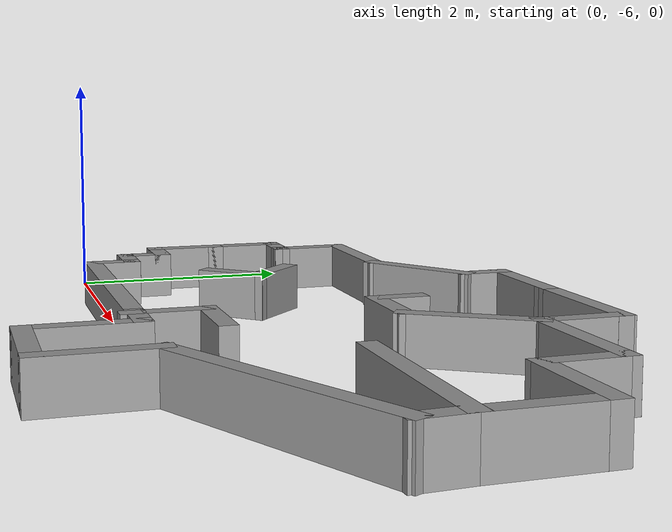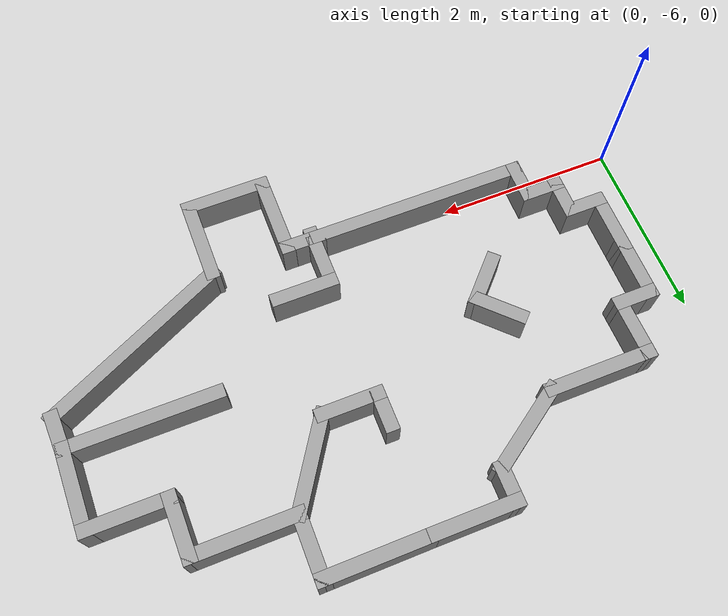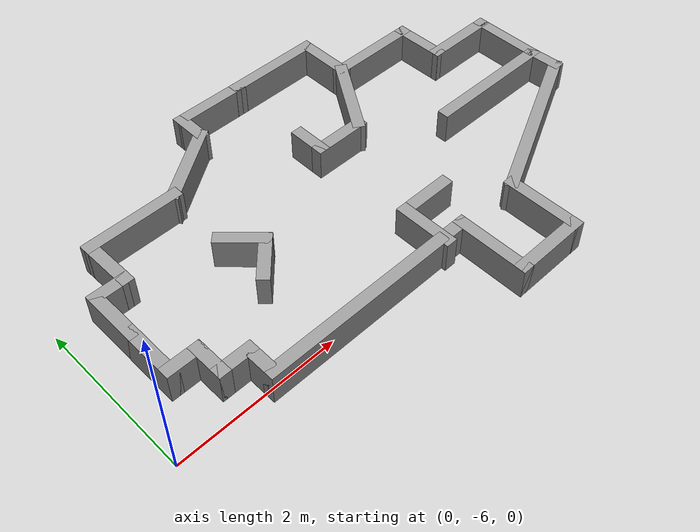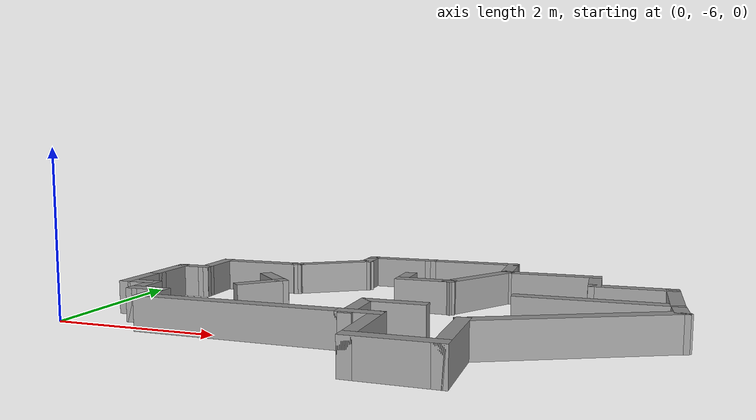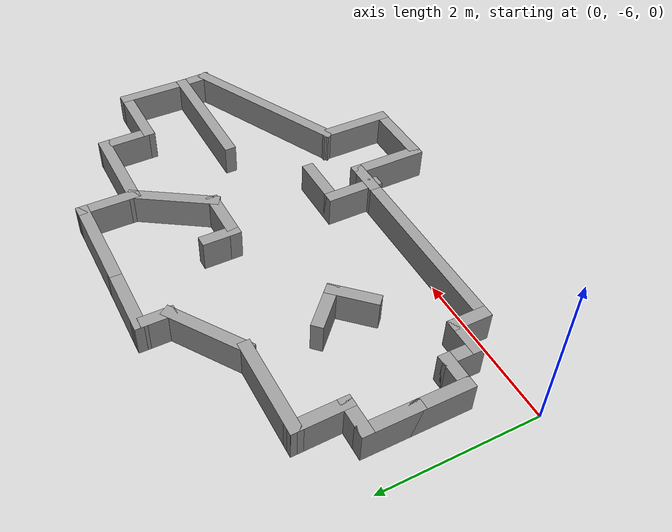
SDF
<?xml version='1.0'?>
<sdf version='1.7'>
  <model name='RAL23_fanhua_1'>
    <pose>3.39752 -3.4885 0 0 -0 0</pose>
    <link name='Wall_100'>
      <collision name='Wall_100_Collision'>
        <geometry>
          <box>
            <size>0.75 0.15 0.4</size>
          </box>
        </geometry>
        <pose>0 0 0.2 0 -0 0</pose>
      </collision>
      <visual name='Wall_100_Visual'>
        <pose>0 0 0.2 0 -0 0</pose>
        <geometry>
          <box>
            <size>0.75 0.15 0.4</size>
          </box>
        </geometry>
        <material>
          <script>
            <uri>file://media/materials/scripts/gazebo.material</uri>
            <name>Gazebo/Grey</name>
          </script>
          <ambient>1 1 1 1</ambient>
        </material>
        <meta>
          <layer>0</layer>
        </meta>
      </visual>
      <pose>-2.92852 -0.9635 0 0 -0 1.5708</pose>
    </link>
    <link name='Wall_101'>
      <collision name='Wall_101_Collision'>
        <geometry>
          <box>
            <size>0.5 0.15 0.4</size>
          </box>
        </geometry>
        <pose>0 0 0.2 0 -0 0</pose>
      </collision>
      <visual name='Wall_101_Visual'>
        <pose>0 0 0.2 0 -0 0</pose>
        <geometry>
          <box>
            <size>0.5 0.15 0.4</size>
          </box>
        </geometry>
        <material>
          <script>
            <uri>file://media/materials/scripts/gazebo.material</uri>
            <name>Gazebo/Grey</name>
          </script>
          <ambient>1 1 1 1</ambient>
        </material>
        <meta>
          <layer>0</layer>
        </meta>
      </visual>
      <pose>-2.75352 -0.6635 0 0 -0 0</pose>
    </link>
    <link name='Wall_102'>
      <collision name='Wall_102_Collision'>
        <geometry>
          <box>
            <size>0.75 0.15 0.4</size>
          </box>
        </geometry>
        <pose>0 0 0.2 0 -0 0</pose>
      </collision>
      <visual name='Wall_102_Visual'>
        <pose>0 0 0.2 0 -0 0</pose>
        <geometry>
          <box>
            <size>0.75 0.15 0.4</size>
          </box>
        </geometry>
        <material>
          <script>
            <uri>file://media/materials/scripts/gazebo.material</uri>
            <name>Gazebo/Grey</name>
          </script>
          <ambient>1 1 1 1</ambient>
        </material>
        <meta>
          <layer>0</layer>
        </meta>
      </visual>
      <pose>-2.58302 -0.3635 0 0 -0 1.5858</pose>
    </link>
    <link name='Wall_103'>
      <collision name='Wall_103_Collision'>
        <geometry>
          <box>
            <size>1.25 0.15 0.4</size>
          </box>
        </geometry>
        <pose>0 0 0.2 0 -0 0</pose>
      </collision>
      <visual name='Wall_103_Visual'>
        <pose>0 0 0.2 0 -0 0</pose>
        <geometry>
          <box>
            <size>1.25 0.15 0.4</size>
          </box>
        </geometry>
        <material>
          <script>
            <uri>file://media/materials/scripts/gazebo.material</uri>
            <name>Gazebo/Grey</name>
          </script>
          <ambient>1 1 1 1</ambient>
        </material>
        <meta>
          <layer>0</layer>
        </meta>
      </visual>
      <pose>-2.03752 -0.0635 0 0 -0 0</pose>
    </link>
    <link name='Wall_104'>
      <collision name='Wall_104_Collision'>
        <geometry>
          <box>
            <size>1.12825 0.15 0.4</size>
          </box>
        </geometry>
        <pose>0 0 0.2 0 -0 0</pose>
      </collision>
      <visual name='Wall_104_Visual'>
        <pose>0 0 0.2 0 -0 0</pose>
        <geometry>
          <box>
            <size>1.12825 0.15 0.4</size>
          </box>
        </geometry>
        <material>
          <script>
            <uri>file://media/materials/scripts/gazebo.material</uri>
            <name>Gazebo/Grey</name>
          </script>
          <ambient>1 1 1 1</ambient>
        </material>
        <meta>
          <layer>0</layer>
        </meta>
      </visual>
      <pose>-1.08302 0.2115 0 0 -0 0.597075</pose>
    </link>
    <link name='Wall_107'>
      <collision name='Wall_107_Collision'>
        <geometry>
          <box>
            <size>0.75 0.15 0.4</size>
          </box>
        </geometry>
        <pose>0 0 0.2 0 -0 0</pose>
      </collision>
      <visual name='Wall_107_Visual'>
        <pose>0 0 0.2 0 -0 0</pose>
        <geometry>
          <box>
            <size>0.75 0.15 0.4</size>
          </box>
        </geometry>
        <material>
          <script>
            <uri>file://media/materials/scripts/gazebo.material</uri>
            <name>Gazebo/Grey</name>
          </script>
          <ambient>1 1 1 1</ambient>
        </material>
        <meta>
          <layer>0</layer>
        </meta>
      </visual>
      <pose>0.471476 -0.6635 0 0 -0 0</pose>
    </link>
    <link name='Wall_108'>
      <collision name='Wall_108_Collision'>
        <geometry>
          <box>
            <size>1.16242 0.15 0.4</size>
          </box>
        </geometry>
        <pose>0 0 0.2 0 -0 0</pose>
      </collision>
      <visual name='Wall_108_Visual'>
        <pose>0 0 0.2 0 -0 0</pose>
        <geometry>
          <box>
            <size>1.16242 0.15 0.4</size>
          </box>
        </geometry>
        <material>
          <script>
            <uri>file://media/materials/scripts/gazebo.material</uri>
            <name>Gazebo/Grey</name>
          </script>
          <ambient>1 1 1 1</ambient>
        </material>
        <meta>
          <layer>0</layer>
        </meta>
      </visual>
      <pose>1.04648 -0.2385 0 0 -0 0.996491</pose>
    </link>
    <link name='Wall_113'>
      <collision name='Wall_113_Collision'>
        <geometry>
          <box>
            <size>0.5 0.15 0.4</size>
          </box>
        </geometry>
        <pose>0 0 0.2 0 -0 0</pose>
      </collision>
      <visual name='Wall_113_Visual'>
        <pose>0 0 0.2 0 -0 0</pose>
        <geometry>
          <box>
            <size>0.5 0.15 0.4</size>
          </box>
        </geometry>
        <material>
          <script>
            <uri>file://media/materials/scripts/gazebo.material</uri>
            <name>Gazebo/Grey</name>
          </script>
          <ambient>1 1 1 1</ambient>
        </material>
        <meta>
          <layer>0</layer>
        </meta>
      </visual>
      <pose>0.171476 -0.4885 0 0 -0 1.5708</pose>
    </link>
    <link name='Wall_121'>
      <collision name='Wall_121_Collision'>
        <geometry>
          <box>
            <size>0.644975 0.15 0.4</size>
          </box>
        </geometry>
        <pose>0 0 0.2 0 -0 0</pose>
      </collision>
      <visual name='Wall_121_Visual'>
        <pose>0 0 0.2 0 -0 0</pose>
        <geometry>
          <box>
            <size>0.644975 0.15 0.4</size>
          </box>
        </geometry>
        <material>
          <script>
            <uri>file://media/materials/scripts/gazebo.material</uri>
            <name>Gazebo/Grey</name>
          </script>
          <ambient>1 1 1 1</ambient>
        </material>
        <meta>
          <layer>0</layer>
        </meta>
      </visual>
      <pose>-1.36152 -1.0825 0 0 -0 -0.785398</pose>
    </link>
    <link name='Wall_122'>
      <collision name='Wall_122_Collision'>
        <geometry>
          <box>
            <size>0.645138 0.15 0.4</size>
          </box>
        </geometry>
        <pose>0 0 0.2 0 -0 0</pose>
      </collision>
      <visual name='Wall_122_Visual'>
        <pose>0 0 0.2 0 -0 0</pose>
        <geometry>
          <box>
            <size>0.645138 0.15 0.4</size>
          </box>
        </geometry>
        <material>
          <script>
            <uri>file://media/materials/scripts/gazebo.material</uri>
            <name>Gazebo/Grey</name>
          </script>
          <ambient>1 1 1 1</ambient>
        </material>
        <meta>
          <layer>0</layer>
        </meta>
      </visual>
      <pose>-1.35702 -1.437 0 0 -0 -2.33049</pose>
    </link>
    <link name='Wall_124'>
      <collision name='Wall_124_Collision'>
        <geometry>
          <box>
            <size>1.75873 0.15 0.4</size>
          </box>
        </geometry>
        <pose>0 0 0.2 0 -0 0</pose>
      </collision>
      <visual name='Wall_124_Visual'>
        <pose>0 0 0.2 0 -0 0</pose>
        <geometry>
          <box>
            <size>1.75873 0.15 0.4</size>
          </box>
        </geometry>
        <material>
          <script>
            <uri>file://media/materials/scripts/gazebo.material</uri>
            <name>Gazebo/Grey</name>
          </script>
          <ambient>1 1 1 1</ambient>
        </material>
        <meta>
          <layer>0</layer>
        </meta>
      </visual>
      <pose>2.47598 -1.2635 0 0 -0 3.14159</pose>
    </link>
    <link name='Wall_131'>
      <collision name='Wall_131_Collision'>
        <geometry>
          <box>
            <size>0.75 0.15 0.4</size>
          </box>
        </geometry>
        <pose>0 0 0.2 0 -0 0</pose>
      </collision>
      <visual name='Wall_131_Visual'>
        <pose>0 0 0.2 0 -0 0</pose>
        <geometry>
          <box>
            <size>0.75 0.15 0.4</size>
          </box>
        </geometry>
        <material>
          <script>
            <uri>file://media/materials/scripts/gazebo.material</uri>
            <name>Gazebo/Grey</name>
          </script>
          <ambient>1 1 1 1</ambient>
        </material>
        <meta>
          <layer>0</layer>
        </meta>
      </visual>
      <pose>0.172476 -2.3165 0 0 -0 1.5708</pose>
    </link>
    <link name='Wall_137'>
      <collision name='Wall_137_Collision'>
        <geometry>
          <box>
            <size>0.75 0.15 0.4</size>
          </box>
        </geometry>
        <pose>0 0 0.2 0 -0 0</pose>
      </collision>
      <visual name='Wall_137_Visual'>
        <pose>0 0 0.2 0 -0 0</pose>
        <geometry>
          <box>
            <size>0.75 0.15 0.4</size>
          </box>
        </geometry>
        <material>
          <script>
            <uri>file://media/materials/scripts/gazebo.material</uri>
            <name>Gazebo/Grey</name>
          </script>
          <ambient>1 1 1 1</ambient>
        </material>
        <meta>
          <layer>0</layer>
        </meta>
      </visual>
      <pose>0.472476 -2.0165 0 0 -0 0</pose>
    </link>
    <link name='Wall_144'>
      <collision name='Wall_144_Collision'>
        <geometry>
          <box>
            <size>0.5 0.15 0.4</size>
          </box>
        </geometry>
        <pose>0 0 0.2 0 -0 0</pose>
      </collision>
      <visual name='Wall_144_Visual'>
        <pose>0 0 0.2 0 -0 0</pose>
        <geometry>
          <box>
            <size>0.5 0.15 0.4</size>
          </box>
        </geometry>
        <material>
          <script>
            <uri>file://media/materials/scripts/gazebo.material</uri>
            <name>Gazebo/Grey</name>
          </script>
          <ambient>1 1 1 1</ambient>
        </material>
        <meta>
          <layer>0</layer>
        </meta>
      </visual>
      <pose>0.296476 -2.5635 0 0 -0 3.14159</pose>
    </link>
    <link name='Wall_48'>
      <collision name='Wall_48_Collision'>
        <geometry>
          <box>
            <size>0.75 0.15 0.4</size>
          </box>
        </geometry>
        <pose>0 0 0.2 0 -0 0</pose>
      </collision>
      <visual name='Wall_48_Visual'>
        <pose>0 0 0.2 0 -0 0</pose>
        <geometry>
          <box>
            <size>0.75 0.15 0.4</size>
          </box>
        </geometry>
        <material>
          <script>
            <uri>file://media/materials/scripts/gazebo.material</uri>
            <name>Gazebo/Grey</name>
          </script>
          <ambient>1 1 1 1</ambient>
        </material>
        <meta>
          <layer>0</layer>
        </meta>
      </visual>
      <pose>-2.92852 -1.5635 0 0 -0 -1.5708</pose>
    </link>
    <link name='Wall_61'>
      <collision name='Wall_61_Collision'>
        <geometry>
          <box>
            <size>0.5 0.15 0.4</size>
          </box>
        </geometry>
        <pose>0 0 0.2 0 -0 0</pose>
      </collision>
      <visual name='Wall_61_Visual'>
        <pose>0 0 0.2 0 -0 0</pose>
        <geometry>
          <box>
            <size>0.5 0.15 0.4</size>
          </box>
        </geometry>
        <material>
          <script>
            <uri>file://media/materials/scripts/gazebo.material</uri>
            <name>Gazebo/Grey</name>
          </script>
          <ambient>1 1 1 1</ambient>
        </material>
        <meta>
          <layer>0</layer>
        </meta>
      </visual>
      <pose>-2.75352 -1.8635 0 0 -0 0</pose>
    </link>
    <link name='Wall_62'>
      <collision name='Wall_62_Collision'>
        <geometry>
          <box>
            <size>0.5 0.15 0.4</size>
          </box>
        </geometry>
        <pose>0 0 0.2 0 -0 0</pose>
      </collision>
      <visual name='Wall_62_Visual'>
        <pose>0 0 0.2 0 -0 0</pose>
        <geometry>
          <box>
            <size>0.5 0.15 0.4</size>
          </box>
        </geometry>
        <material>
          <script>
            <uri>file://media/materials/scripts/gazebo.material</uri>
            <name>Gazebo/Grey</name>
          </script>
          <ambient>1 1 1 1</ambient>
        </material>
        <meta>
          <layer>0</layer>
        </meta>
      </visual>
      <pose>-2.57852 -2.0385 0 0 -0 -1.5708</pose>
    </link>
    <link name='Wall_63'>
      <collision name='Wall_63_Collision'>
        <geometry>
          <box>
            <size>0.499729 0.15 0.4</size>
          </box>
        </geometry>
        <pose>0 0 0.2 0 -0 0</pose>
      </collision>
      <visual name='Wall_63_Visual'>
        <pose>0 0 0.2 0 -0 0</pose>
        <geometry>
          <box>
            <size>0.499729 0.15 0.4</size>
          </box>
        </geometry>
        <material>
          <script>
            <uri>file://media/materials/scripts/gazebo.material</uri>
            <name>Gazebo/Grey</name>
          </script>
          <ambient>1 1 1 1</ambient>
        </material>
        <meta>
          <layer>0</layer>
        </meta>
      </visual>
      <pose>-2.40352 -2.2135 0 0 -0 0</pose>
    </link>
    <link name='Wall_64'>
      <collision name='Wall_64_Collision'>
        <geometry>
          <box>
            <size>0.499658 0.15 0.4</size>
          </box>
        </geometry>
        <pose>0 0 0.2 0 -0 0</pose>
      </collision>
      <visual name='Wall_64_Visual'>
        <pose>0 0 0.2 0 -0 0</pose>
        <geometry>
          <box>
            <size>0.499658 0.15 0.4</size>
          </box>
        </geometry>
        <material>
          <script>
            <uri>file://media/materials/scripts/gazebo.material</uri>
            <name>Gazebo/Grey</name>
          </script>
          <ambient>1 1 1 1</ambient>
        </material>
        <meta>
          <layer>0</layer>
        </meta>
      </visual>
      <pose>-2.22852 -2.3885 0 0 -0 -1.5708</pose>
    </link>
    <link name='Wall_65'>
      <collision name='Wall_65_Collision'>
        <geometry>
          <box>
            <size>2.5 0.15 0.4</size>
          </box>
        </geometry>
        <pose>0 0 0.2 0 -0 0</pose>
      </collision>
      <visual name='Wall_65_Visual'>
        <pose>0 0 0.2 0 -0 0</pose>
        <geometry>
          <box>
            <size>2.5 0.15 0.4</size>
          </box>
        </geometry>
        <material>
          <script>
            <uri>file://media/materials/scripts/gazebo.material</uri>
            <name>Gazebo/Grey</name>
          </script>
          <ambient>1 1 1 1</ambient>
        </material>
        <meta>
          <layer>0</layer>
        </meta>
      </visual>
      <pose>-1.05352 -2.5635 0 0 -0 0</pose>
    </link>
    <link name='Wall_67'>
      <collision name='Wall_67_Collision'>
        <geometry>
          <box>
            <size>1 0.15 0.4</size>
          </box>
        </geometry>
        <pose>0 0 0.2 0 -0 0</pose>
      </collision>
      <visual name='Wall_67_Visual'>
        <pose>0 0 0.2 0 -0 0</pose>
        <geometry>
          <box>
            <size>1 0.15 0.4</size>
          </box>
        </geometry>
        <material>
          <script>
            <uri>file://media/materials/scripts/gazebo.material</uri>
            <name>Gazebo/Grey</name>
          </script>
          <ambient>1 1 1 1</ambient>
        </material>
        <meta>
          <layer>0</layer>
        </meta>
      </visual>
      <pose>0.471476 -2.9885 0 0 -0 -1.5708</pose>
    </link>
    <link name='Wall_68'>
      <collision name='Wall_68_Collision'>
        <geometry>
          <box>
            <size>1 0.15 0.4</size>
          </box>
        </geometry>
        <pose>0 0 0.2 0 -0 0</pose>
      </collision>
      <visual name='Wall_68_Visual'>
        <pose>0 0 0.2 0 -0 0</pose>
        <geometry>
          <box>
            <size>1 0.15 0.4</size>
          </box>
        </geometry>
        <material>
          <script>
            <uri>file://media/materials/scripts/gazebo.material</uri>
            <name>Gazebo/Grey</name>
          </script>
          <ambient>1 1 1 1</ambient>
        </material>
        <meta>
          <layer>0</layer>
        </meta>
      </visual>
      <pose>0.896477 -3.4135 0 0 -0 0</pose>
    </link>
    <link name='Wall_69'>
      <collision name='Wall_69_Collision'>
        <geometry>
          <box>
            <size>1 0.15 0.4</size>
          </box>
        </geometry>
        <pose>0 0 0.2 0 -0 0</pose>
      </collision>
      <visual name='Wall_69_Visual'>
        <pose>0 0 0.2 0 -0 0</pose>
        <geometry>
          <box>
            <size>1 0.15 0.4</size>
          </box>
        </geometry>
        <material>
          <script>
            <uri>file://media/materials/scripts/gazebo.material</uri>
            <name>Gazebo/Grey</name>
          </script>
          <ambient>1 1 1 1</ambient>
        </material>
        <meta>
          <layer>0</layer>
        </meta>
      </visual>
      <pose>1.32148 -2.9885 0 0 -0 1.5708</pose>
    </link>
    <link name='Wall_80'>
      <collision name='Wall_80_Collision'>
        <geometry>
          <box>
            <size>0.500765 0.15 0.4</size>
          </box>
        </geometry>
        <pose>0 0 0.2 0 -0 0</pose>
      </collision>
      <visual name='Wall_80_Visual'>
        <pose>0 0 0.2 0 -0 0</pose>
        <geometry>
          <box>
            <size>0.500765 0.15 0.4</size>
          </box>
        </geometry>
        <material>
          <script>
            <uri>file://media/materials/scripts/gazebo.material</uri>
            <name>Gazebo/Grey</name>
          </script>
          <ambient>1 1 1 1</ambient>
        </material>
        <meta>
          <layer>0</layer>
        </meta>
      </visual>
      <pose>3.28898 -1.4385 0 0 -0 -1.52226</pose>
    </link>
    <link name='Wall_81'>
      <collision name='Wall_81_Collision'>
        <geometry>
          <box>
            <size>2.34241 0.15 0.4</size>
          </box>
        </geometry>
        <pose>0 0 0.2 0 -0 0</pose>
      </collision>
      <visual name='Wall_81_Visual'>
        <pose>0 0 0.2 0 -0 0</pose>
        <geometry>
          <box>
            <size>2.34241 0.15 0.4</size>
          </box>
        </geometry>
        <material>
          <script>
            <uri>file://media/materials/scripts/gazebo.material</uri>
            <name>Gazebo/Grey</name>
          </script>
          <ambient>1 1 1 1</ambient>
        </material>
        <meta>
          <layer>0</layer>
        </meta>
      </visual>
      <pose>2.30948 -2.0885 0 0 -0 -2.69345</pose>
    </link>
    <link name='Wall_83'>
      <collision name='Wall_83_Collision'>
        <geometry>
          <box>
            <size>1 0.15 0.4</size>
          </box>
        </geometry>
        <pose>0 0 0.2 0 -0 0</pose>
      </collision>
      <visual name='Wall_83_Visual'>
        <pose>0 0 0.2 0 -0 0</pose>
        <geometry>
          <box>
            <size>1 0.15 0.4</size>
          </box>
        </geometry>
        <material>
          <script>
            <uri>file://media/materials/scripts/gazebo.material</uri>
            <name>Gazebo/Grey</name>
          </script>
          <ambient>1 1 1 1</ambient>
        </material>
        <meta>
          <layer>0</layer>
        </meta>
      </visual>
      <pose>3.28048 -0.8385 0 0 -0 1.5708</pose>
    </link>
    <link name='Wall_84'>
      <collision name='Wall_84_Collision'>
        <geometry>
          <box>
            <size>1.00027 0.15 0.4</size>
          </box>
        </geometry>
        <pose>0 0 0.2 0 -0 0</pose>
      </collision>
      <visual name='Wall_84_Visual'>
        <pose>0 0 0.2 0 -0 0</pose>
        <geometry>
          <box>
            <size>1.00027 0.15 0.4</size>
          </box>
        </geometry>
        <material>
          <script>
            <uri>file://media/materials/scripts/gazebo.material</uri>
            <name>Gazebo/Grey</name>
          </script>
          <ambient>1 1 1 1</ambient>
        </material>
        <meta>
          <layer>0</layer>
        </meta>
      </visual>
      <pose>2.85548 -0.4135 0 0 -0 3.14159</pose>
    </link>
    <link name='Wall_85'>
      <collision name='Wall_85_Collision'>
        <geometry>
          <box>
            <size>0.75 0.15 0.4</size>
          </box>
        </geometry>
        <pose>0 0 0.2 0 -0 0</pose>
      </collision>
      <visual name='Wall_85_Visual'>
        <pose>0 0 0.2 0 -0 0</pose>
        <geometry>
          <box>
            <size>0.75 0.15 0.4</size>
          </box>
        </geometry>
        <material>
          <script>
            <uri>file://media/materials/scripts/gazebo.material</uri>
            <name>Gazebo/Grey</name>
          </script>
          <ambient>1 1 1 1</ambient>
        </material>
        <meta>
          <layer>0</layer>
        </meta>
      </visual>
      <pose>2.42598 -0.1135 0 0 -0 1.5858</pose>
    </link>
    <link name='Wall_86'>
      <collision name='Wall_86_Collision'>
        <geometry>
          <box>
            <size>1.25 0.15 0.4</size>
          </box>
        </geometry>
        <pose>0 0 0.2 0 -0 0</pose>
      </collision>
      <visual name='Wall_86_Visual'>
        <pose>0 0 0.2 0 -0 0</pose>
        <geometry>
          <box>
            <size>1.25 0.15 0.4</size>
          </box>
        </geometry>
        <material>
          <script>
            <uri>file://media/materials/scripts/gazebo.material</uri>
            <name>Gazebo/Grey</name>
          </script>
          <ambient>1 1 1 1</ambient>
        </material>
        <meta>
          <layer>0</layer>
        </meta>
      </visual>
      <pose>1.87148 0.1865 0 0 -0 3.14159</pose>
    </link>
    <link name='Wall_93'>
      <collision name='Wall_93_Collision'>
        <geometry>
          <box>
            <size>0.8 0.15 0.4</size>
          </box>
        </geometry>
        <pose>0 0 0.2 0 -0 0</pose>
      </collision>
      <visual name='Wall_93_Visual'>
        <pose>0 0 0.2 0 -0 0</pose>
        <geometry>
          <box>
            <size>0.8 0.15 0.4</size>
          </box>
        </geometry>
        <material>
          <script>
            <uri>file://media/materials/scripts/gazebo.material</uri>
            <name>Gazebo/Grey</name>
          </script>
          <ambient>1 1 1 1</ambient>
        </material>
        <meta>
          <layer>0</layer>
        </meta>
      </visual>
      <pose>1.32148 0.5115 0 0 -0 1.5708</pose>
    </link>
    <link name='Wall_95'>
      <collision name='Wall_95_Collision'>
        <geometry>
          <box>
            <size>1.2993 0.15 0.4</size>
          </box>
        </geometry>
        <pose>0 0 0.2 0 -0 0</pose>
      </collision>
      <visual name='Wall_95_Visual'>
        <pose>0 0 0.2 0 -0 0</pose>
        <geometry>
          <box>
            <size>1.2993 0.15 0.4</size>
          </box>
        </geometry>
        <material>
          <script>
            <uri>file://media/materials/scripts/gazebo.material</uri>
            <name>Gazebo/Grey</name>
          </script>
          <ambient>1 1 1 1</ambient>
        </material>
        <meta>
          <layer>0</layer>
        </meta>
      </visual>
      <pose>0.746976 0.835 0 0 -0 0.002611</pose>
    </link>
    <link name='Wall_97'>
      <collision name='Wall_97_Collision'>
        <geometry>
          <box>
            <size>1.00076 0.15 0.4</size>
          </box>
        </geometry>
        <pose>0 0 0.2 0 -0 0</pose>
      </collision>
      <visual name='Wall_97_Visual'>
        <pose>0 0 0.2 0 -0 0</pose>
        <geometry>
          <box>
            <size>1.00076 0.15 0.4</size>
          </box>
        </geometry>
        <material>
          <script>
            <uri>file://media/materials/scripts/gazebo.material</uri>
            <name>Gazebo/Grey</name>
          </script>
          <ambient>1 1 1 1</ambient>
        </material>
        <meta>
          <layer>0</layer>
        </meta>
      </visual>
      <pose>-0.253024 0.835 0 0 -0 3.13807</pose>
    </link>
    <link name='Wall_98'>
      <collision name='Wall_98_Collision'>
        <geometry>
          <box>
            <size>0.5 0.15 0.4</size>
          </box>
        </geometry>
        <pose>0 0 0.2 0 -0 0</pose>
      </collision>
      <visual name='Wall_98_Visual'>
        <pose>0 0 0.2 0 -0 0</pose>
        <geometry>
          <box>
            <size>0.5 0.15 0.4</size>
          </box>
        </geometry>
        <material>
          <script>
            <uri>file://media/materials/scripts/gazebo.material</uri>
            <name>Gazebo/Grey</name>
          </script>
          <ambient>1 1 1 1</ambient>
        </material>
        <meta>
          <layer>0</layer>
        </meta>
      </visual>
      <pose>-0.678524 0.6615 0 0 -0 -1.5708</pose>
    </link>
    <static>1</static>
  </model>
</sdf>
